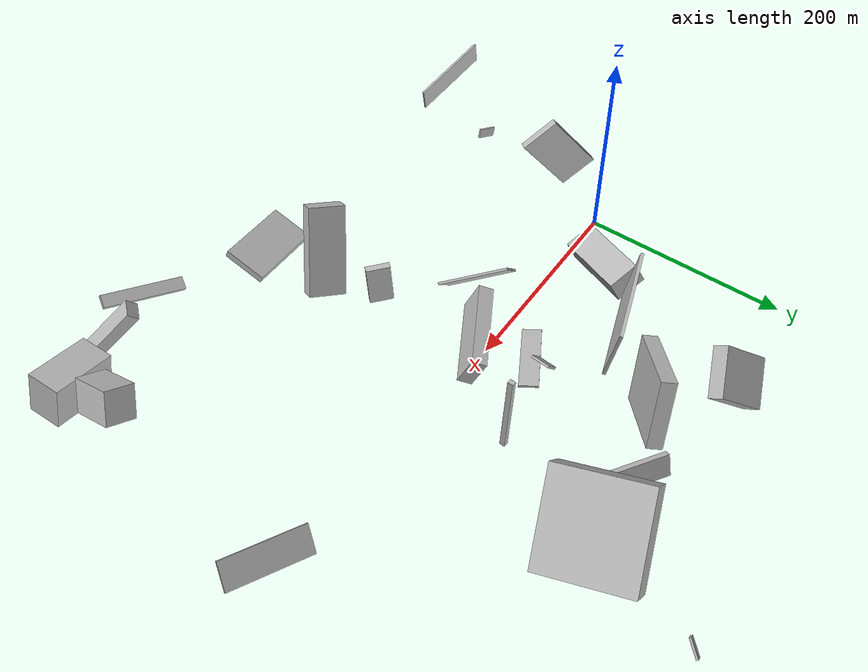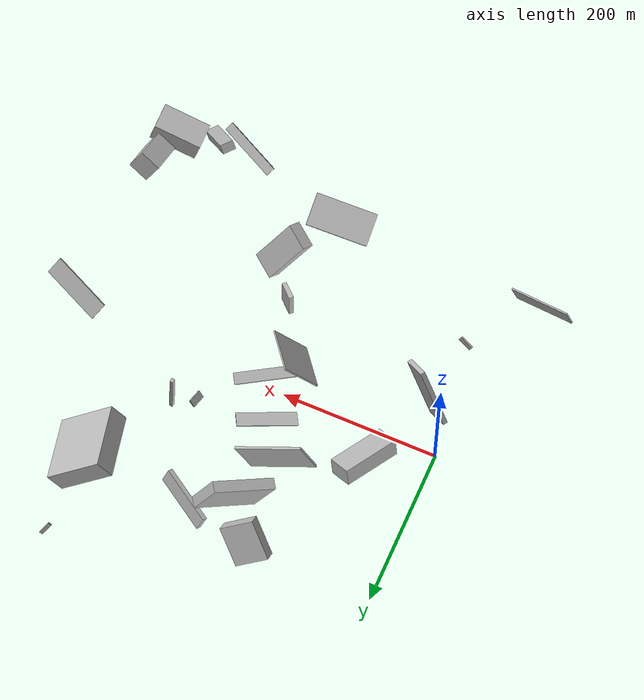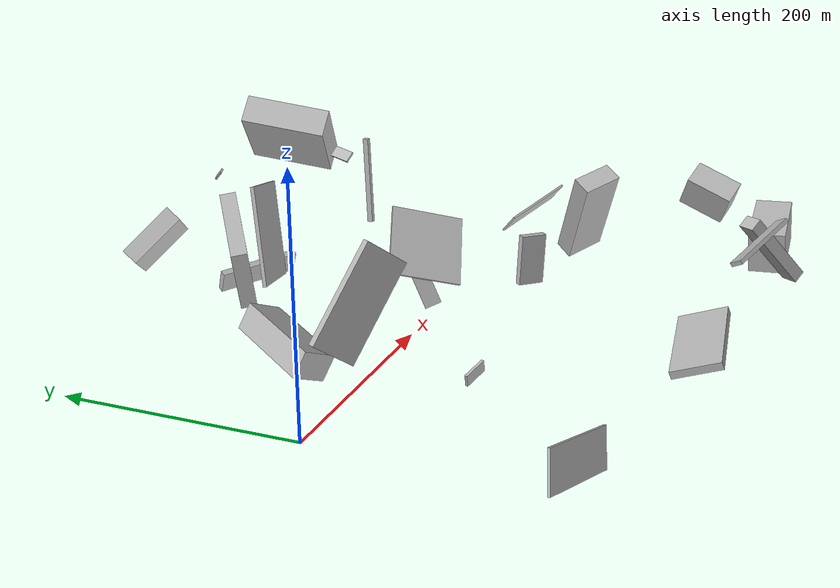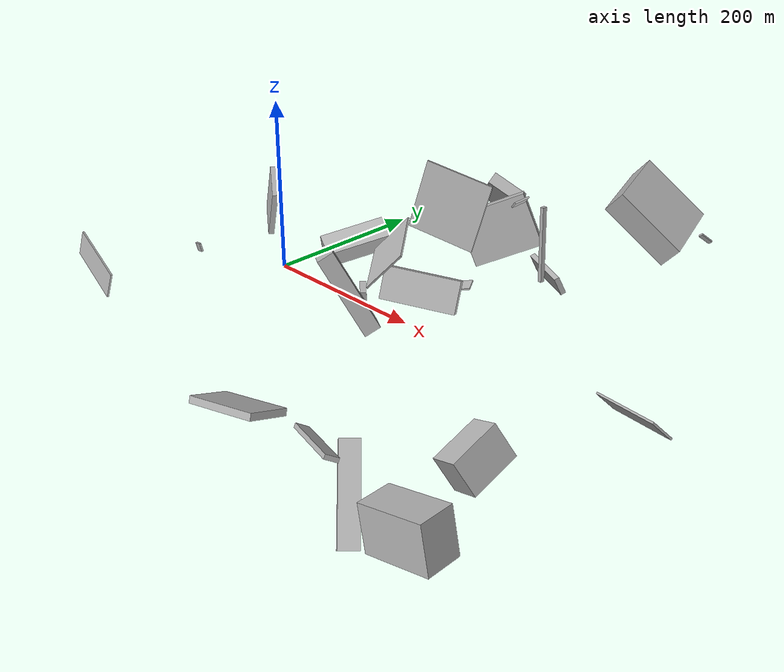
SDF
<sdf version="1.6">
 <world name="default">
  <scene>
   <sky><clouds><speed>12</speed></clouds></sky>
   <ambient>0.4 0.4 0.4 1</ambient>
   <background>0.7 0.7 0.7 1</background>
   <shadows>1</shadows>
  </scene>
  <gravity>0 0 -9.8066</gravity>
  <magnetic_field>6e-06 2.3e-05 -4.2e-05</magnetic_field>
  <physics default="0" name="default_physics" type="ode">
   <ode>
    <solver>
     <type>quick</type>
     <iters>10</iters>
     <sor>1.0</sor>
     <use_dynamic_moi_rescaling>0</use_dynamic_moi_rescaling>
    </solver>
    <constraints>
     <cfm>0</cfm>
     <erp>0.2</erp>
     <contact_max_correcting_vel>100</contact_max_correcting_vel>
     <contact_surface_layer>0.001</contact_surface_layer>
    </constraints>
   </ode>
   <max_step_size>0.004</max_step_size>
   <real_time_factor>1</real_time_factor>
   <real_time_update_rate>250</real_time_update_rate>
  </physics>
  <light name="sun" type="directional">
   <pose>0 0 10 0 0 0</pose>
   <diffuse>0.8 0.8 0.8 1</diffuse>
   <specular>0.2 0.2 0.2 1</specular>
   <attenuation>
    <range>1000</range>
    <constant>0.9</constant>
    <linear>0.01</linear>
    <quadratic>0.001</quadratic>
   </attenuation>
   <direction>-0.5 0.1 -0.9</direction>
  </light>
  <model name="building_1">
   <static>0</static>
   <pose>76.04790630792351 45.089461199754645 48.779330055488025 2.920559681753308 -0.41017167565143564 2.736299766734667</pose>
   <link name="link">
    <gravity>0</gravity>
    <pose>0 0 11.0 0 0 0</pose>
    <collision name="collision"><geometry><box><size>30 76 22</size></box></geometry></collision>
    <visual name="visual">
     <cast_shadows>0</cast_shadows>
     <geometry><box><size>30 76 22</size></box></geometry>
     <material>
      <script>
       <uri>model://HANNAS_wall/materials/scripts</uri>
       <uri>model://HANNAS_wall/materials/textures</uri>
       <name>vrc/HANNAS_wall</name>
      </script>
     </material>
    </visual>
   </link>
  </model>
  <model name="building_2">
   <static>0</static>
   <pose>306.69994348847916 89.30317593972296 96.86076143409947 -1.4485122574014349 -1.5193719429761932 2.8869497635699277</pose>
   <link name="link">
    <gravity>0</gravity>
    <pose>0 0 2.5 0 0 0</pose>
    <collision name="collision"><geometry><box><size>80 4 5</size></box></geometry></collision>
    <visual name="visual">
     <cast_shadows>0</cast_shadows>
     <geometry><box><size>80 4 5</size></box></geometry>
     <material>
      <script>
       <uri>model://HANNAS_wall/materials/scripts</uri>
       <uri>model://HANNAS_wall/materials/textures</uri>
       <name>vrc/HANNAS_wall</name>
      </script>
     </material>
    </visual>
   </link>
  </model>
  <model name="building_3">
   <static>0</static>
   <pose>196.97712582850104 55.061619468064734 27.579972238937458 1.6465893319324172 -0.19250675857624452 0.504080026125055</pose>
   <link name="link">
    <gravity>0</gravity>
    <pose>0 0 9.0 0 0 0</pose>
    <collision name="collision"><geometry><box><size>76 2 18</size></box></geometry></collision>
    <visual name="visual">
     <cast_shadows>0</cast_shadows>
     <geometry><box><size>76 2 18</size></box></geometry>
     <material>
      <script>
       <uri>model://HANNAS_wall/materials/scripts</uri>
       <uri>model://HANNAS_wall/materials/textures</uri>
       <name>vrc/HANNAS_wall</name>
      </script>
     </material>
    </visual>
   </link>
  </model>
  <model name="building_4">
   <static>0</static>
   <pose>-49.917110470744504 -213.45691588801674 57.570302563754375 1.7367522456977493 -0.2629374850045297 2.961086824282669</pose>
   <link name="link">
    <gravity>0</gravity>
    <pose>0 0 1.0 0 0 0</pose>
    <collision name="collision"><geometry><box><size>80 28 2</size></box></geometry></collision>
    <visual name="visual">
     <cast_shadows>0</cast_shadows>
     <geometry><box><size>80 28 2</size></box></geometry>
     <material>
      <script>
       <uri>model://HANNAS_wall/materials/scripts</uri>
       <uri>model://HANNAS_wall/materials/textures</uri>
       <name>vrc/HANNAS_wall</name>
      </script>
     </material>
    </visual>
   </link>
  </model>
  <model name="building_5">
   <static>0</static>
   <pose>29.64558829507472 -32.010425852530425 99.8481769485184 -1.4956779648121437 -0.6299224830429166 2.5040331896353</pose>
   <link name="link">
    <gravity>0</gravity>
    <pose>0 0 3.0 0 0 0</pose>
    <collision name="collision"><geometry><box><size>37 80 6</size></box></geometry></collision>
    <visual name="visual">
     <cast_shadows>0</cast_shadows>
     <geometry><box><size>37 80 6</size></box></geometry>
     <material>
      <script>
       <uri>model://HANNAS_wall/materials/scripts</uri>
       <uri>model://HANNAS_wall/materials/textures</uri>
       <name>vrc/HANNAS_wall</name>
      </script>
     </material>
    </visual>
   </link>
  </model>
  <model name="building_6">
   <static>0</static>
   <pose>217.40635842466637 6.560076079788521 44.46073576202037 -1.1945702789649921 -0.1025025628481596 -2.630331385807897</pose>
   <link name="link">
    <gravity>0</gravity>
    <pose>0 0 7.0 0 0 0</pose>
    <collision name="collision"><geometry><box><size>80 35 14</size></box></geometry></collision>
    <visual name="visual">
     <cast_shadows>0</cast_shadows>
     <geometry><box><size>80 35 14</size></box></geometry>
     <material>
      <script>
       <uri>model://HANNAS_wall/materials/scripts</uri>
       <uri>model://HANNAS_wall/materials/textures</uri>
       <name>vrc/HANNAS_wall</name>
      </script>
     </material>
    </visual>
   </link>
  </model>
  <model name="building_7">
   <static>0</static>
   <pose>191.06145528694555 -17.84634617487471 85.3578008997323 2.2507146204383814 -0.2740168381832624 2.2172568862591193</pose>
   <link name="link">
    <gravity>0</gravity>
    <pose>0 0 1.0 0 0 0</pose>
    <collision name="collision"><geometry><box><size>61 58 2</size></box></geometry></collision>
    <visual name="visual">
     <cast_shadows>0</cast_shadows>
     <geometry><box><size>61 58 2</size></box></geometry>
     <material>
      <script>
       <uri>model://HANNAS_wall/materials/scripts</uri>
       <uri>model://HANNAS_wall/materials/textures</uri>
       <name>vrc/HANNAS_wall</name>
      </script>
     </material>
    </visual>
   </link>
  </model>
  <model name="building_8">
   <static>0</static>
   <pose>13.956068099656608 -125.13636815894546 69.0213280568838 1.1515460793784407 -1.2454960604112426 -3.051983912061413</pose>
   <link name="link">
    <gravity>0</gravity>
    <pose>0 0 1.0 0 0 0</pose>
    <collision name="collision"><geometry><box><size>9 18 2</size></box></geometry></collision>
    <visual name="visual">
     <cast_shadows>0</cast_shadows>
     <geometry><box><size>9 18 2</size></box></geometry>
     <material>
      <script>
       <uri>model://HANNAS_wall/materials/scripts</uri>
       <uri>model://HANNAS_wall/materials/textures</uri>
       <name>vrc/HANNAS_wall</name>
      </script>
     </material>
    </visual>
   </link>
  </model>
  <model name="building_9">
   <static>0</static>
   <pose>355.8224495034617 197.86402161299543 106.88695317843586 0.6968093752605053 -0.15852935025292528 1.8021287039524216</pose>
   <link name="link">
    <gravity>0</gravity>
    <pose>0 0 13.5 0 0 0</pose>
    <collision name="collision"><geometry><box><size>80 80 27</size></box></geometry></collision>
    <visual name="visual">
     <cast_shadows>0</cast_shadows>
     <geometry><box><size>80 80 27</size></box></geometry>
     <material>
      <script>
       <uri>model://HANNAS_wall/materials/scripts</uri>
       <uri>model://HANNAS_wall/materials/textures</uri>
       <name>vrc/HANNAS_wall</name>
      </script>
     </material>
    </visual>
   </link>
  </model>
  <model name="building_10">
   <static>0</static>
   <pose>385.36455502101626 -249.36994495436926 71.46699259756036 3.054297281573171 -0.7497112893518799 -0.6539026567406591</pose>
   <link name="link">
    <gravity>0</gravity>
    <pose>0 0 40.0 0 0 0</pose>
    <collision name="collision"><geometry><box><size>12 17 80</size></box></geometry></collision>
    <visual name="visual">
     <cast_shadows>0</cast_shadows>
     <geometry><box><size>12 17 80</size></box></geometry>
     <material>
      <script>
       <uri>model://HANNAS_wall/materials/scripts</uri>
       <uri>model://HANNAS_wall/materials/textures</uri>
       <name>vrc/HANNAS_wall</name>
      </script>
     </material>
    </visual>
   </link>
  </model>
  <model name="building_11">
   <static>0</static>
   <pose>253.5006936827504 179.33217973221016 16.505943540109488 2.009396169195186 -0.061082447749270255 -0.5590279948926604</pose>
   <link name="link">
    <gravity>0</gravity>
    <pose>0 0 3.0 0 0 0</pose>
    <collision name="collision"><geometry><box><size>75 21 6</size></box></geometry></collision>
    <visual name="visual">
     <cast_shadows>0</cast_shadows>
     <geometry><box><size>75 21 6</size></box></geometry>
     <material>
      <script>
       <uri>model://HANNAS_wall/materials/scripts</uri>
       <uri>model://HANNAS_wall/materials/textures</uri>
       <name>vrc/HANNAS_wall</name>
      </script>
     </material>
    </visual>
   </link>
  </model>
  <model name="building_12">
   <static>0</static>
   <pose>327.07882080745566 -247.7147650254478 52.710066372471964 -1.0487114933075372 1.0132247332797506 -1.5103023850679795</pose>
   <link name="link">
    <gravity>0</gravity>
    <pose>0 0 38.5 0 0 0</pose>
    <collision name="collision"><geometry><box><size>4 12 77</size></box></geometry></collision>
    <visual name="visual">
     <cast_shadows>0</cast_shadows>
     <geometry><box><size>4 12 77</size></box></geometry>
     <material>
      <script>
       <uri>model://HANNAS_wall/materials/scripts</uri>
       <uri>model://HANNAS_wall/materials/textures</uri>
       <name>vrc/HANNAS_wall</name>
      </script>
     </material>
    </visual>
   </link>
  </model>
  <model name="building_13">
   <static>0</static>
   <pose>189.75873197920146 166.20695219603624 56.40171103272833 1.4369343727453645 -0.4087308621533723 0.6453244345974076</pose>
   <link name="link">
    <gravity>0</gravity>
    <pose>0 0 7.0 0 0 0</pose>
    <collision name="collision"><geometry><box><size>80 63 14</size></box></geometry></collision>
    <visual name="visual">
     <cast_shadows>0</cast_shadows>
     <geometry><box><size>80 63 14</size></box></geometry>
     <material>
      <script>
       <uri>model://HANNAS_wall/materials/scripts</uri>
       <uri>model://HANNAS_wall/materials/textures</uri>
       <name>vrc/HANNAS_wall</name>
      </script>
     </material>
    </visual>
   </link>
  </model>
  <model name="building_14">
   <static>0</static>
   <pose>453.126786937942 -197.32103954587876 65.62147384620187 1.1337993079831967 -0.3736819649205317 1.4933490239224507</pose>
   <link name="link">
    <gravity>0</gravity>
    <pose>0 0 14.0 0 0 0</pose>
    <collision name="collision"><geometry><box><size>44 31 28</size></box></geometry></collision>
    <visual name="visual">
     <cast_shadows>0</cast_shadows>
     <geometry><box><size>44 31 28</size></box></geometry>
     <material>
      <script>
       <uri>model://HANNAS_wall/materials/scripts</uri>
       <uri>model://HANNAS_wall/materials/textures</uri>
       <name>vrc/HANNAS_wall</name>
      </script>
     </material>
    </visual>
   </link>
  </model>
  <model name="building_15">
   <static>0</static>
   <pose>225.47659624189623 -236.1995515820063 23.802067781811623 -2.951580697917604 -0.3468771505141532 -1.5257956031332764</pose>
   <link name="link">
    <gravity>0</gravity>
    <pose>0 0 3.5 0 0 0</pose>
    <collision name="collision"><geometry><box><size>42 80 7</size></box></geometry></collision>
    <visual name="visual">
     <cast_shadows>0</cast_shadows>
     <geometry><box><size>42 80 7</size></box></geometry>
     <material>
      <script>
       <uri>model://HANNAS_wall/materials/scripts</uri>
       <uri>model://HANNAS_wall/materials/textures</uri>
       <name>vrc/HANNAS_wall</name>
      </script>
     </material>
    </visual>
   </link>
  </model>
  <model name="building_16">
   <static>0</static>
   <pose>161.65513666337026 108.69471041386444 90.46536956816863 -2.0635645686895034 -1.3119513887627354 0.8155780654475047</pose>
   <link name="link">
    <gravity>0</gravity>
    <pose>0 0 1.5 0 0 0</pose>
    <collision name="collision"><geometry><box><size>80 80 3</size></box></geometry></collision>
    <visual name="visual">
     <cast_shadows>0</cast_shadows>
     <geometry><box><size>80 80 3</size></box></geometry>
     <material>
      <script>
       <uri>model://HANNAS_wall/materials/scripts</uri>
       <uri>model://HANNAS_wall/materials/textures</uri>
       <name>vrc/HANNAS_wall</name>
      </script>
     </material>
    </visual>
   </link>
  </model>
  <model name="building_17">
   <static>0</static>
   <pose>271.03481704304073 -142.92217253623025 110.8301235369218 1.8177464681525575 0.49292834100153543 -2.0807180599347506</pose>
   <link name="link">
    <gravity>0</gravity>
    <pose>0 0 16.5 0 0 0</pose>
    <collision name="collision"><geometry><box><size>16 80 33</size></box></geometry></collision>
    <visual name="visual">
     <cast_shadows>0</cast_shadows>
     <geometry><box><size>16 80 33</size></box></geometry>
     <material>
      <script>
       <uri>model://HANNAS_wall/materials/scripts</uri>
       <uri>model://HANNAS_wall/materials/textures</uri>
       <name>vrc/HANNAS_wall</name>
      </script>
     </material>
    </visual>
   </link>
  </model>
  <model name="building_18">
   <static>0</static>
   <pose>452.65409142534503 -260.3379031425047 56.77243500128351 2.9011983415899234 0.043000900304831086 1.591356864262328</pose>
   <link name="link">
    <gravity>0</gravity>
    <pose>0 0 20.5 0 0 0</pose>
    <collision name="collision"><geometry><box><size>33 62 41</size></box></geometry></collision>
    <visual name="visual">
     <cast_shadows>0</cast_shadows>
     <geometry><box><size>33 62 41</size></box></geometry>
     <material>
      <script>
       <uri>model://HANNAS_wall/materials/scripts</uri>
       <uri>model://HANNAS_wall/materials/textures</uri>
       <name>vrc/HANNAS_wall</name>
      </script>
     </material>
    </visual>
   </link>
  </model>
  <model name="building_19">
   <static>0</static>
   <pose>449.60275866729893 -2.2599698462132256 20.152475555387575 1.2608085126081003 0.7830499787558148 0.9663181093283076</pose>
   <link name="link">
    <gravity>0</gravity>
    <pose>0 0 40.0 0 0 0</pose>
    <collision name="collision"><geometry><box><size>26 2 80</size></box></geometry></collision>
    <visual name="visual">
     <cast_shadows>0</cast_shadows>
     <geometry><box><size>26 2 80</size></box></geometry>
     <material>
      <script>
       <uri>model://HANNAS_wall/materials/scripts</uri>
       <uri>model://HANNAS_wall/materials/textures</uri>
       <name>vrc/HANNAS_wall</name>
      </script>
     </material>
    </visual>
   </link>
  </model>
  <model name="building_20">
   <static>0</static>
   <pose>170.344092264086 223.41520243688694 62.225656912435824 0.8920987209752229 -0.6686081839597848 -0.675635337995741</pose>
   <link name="link">
    <gravity>0</gravity>
    <pose>0 0 22.0 0 0 0</pose>
    <collision name="collision"><geometry><box><size>51 15 44</size></box></geometry></collision>
    <visual name="visual">
     <cast_shadows>0</cast_shadows>
     <geometry><box><size>51 15 44</size></box></geometry>
     <material>
      <script>
       <uri>model://HANNAS_wall/materials/scripts</uri>
       <uri>model://HANNAS_wall/materials/textures</uri>
       <name>vrc/HANNAS_wall</name>
      </script>
     </material>
    </visual>
   </link>
  </model>
  <model name="building_21">
   <static>0</static>
   <pose>237.46038942548472 -90.59566301194761 68.42046262473822 1.5897087006915958 0.04525286144021641 -0.7460207683345281</pose>
   <link name="link">
    <gravity>0</gravity>
    <pose>0 0 3.0 0 0 0</pose>
    <collision name="collision"><geometry><box><size>22 42 6</size></box></geometry></collision>
    <visual name="visual">
     <cast_shadows>0</cast_shadows>
     <geometry><box><size>22 42 6</size></box></geometry>
     <material>
      <script>
       <uri>model://HANNAS_wall/materials/scripts</uri>
       <uri>model://HANNAS_wall/materials/textures</uri>
       <name>vrc/HANNAS_wall</name>
      </script>
     </material>
    </visual>
   </link>
  </model>
  <model name="building_22">
   <static>0</static>
   <pose>266.4973981340903 96.31630905861445 126.76585048213329 0.776411250478054 -0.17452896598999232 1.350528058729603</pose>
   <link name="link">
    <gravity>0</gravity>
    <pose>0 0 5.0 0 0 0</pose>
    <collision name="collision"><geometry><box><size>18 2 10</size></box></geometry></collision>
    <visual name="visual">
     <cast_shadows>0</cast_shadows>
     <geometry><box><size>18 2 10</size></box></geometry>
     <material>
      <script>
       <uri>model://HANNAS_wall/materials/scripts</uri>
       <uri>model://HANNAS_wall/materials/textures</uri>
       <name>vrc/HANNAS_wall</name>
      </script>
     </material>
    </visual>
   </link>
  </model>
  <model name="building_23">
   <static>0</static>
   <pose>374.2780034286313 286.31726330020183 66.83892122819955 2.4436497716393597 0.6653543446069748 -3.0812118370119994</pose>
   <link name="link">
    <gravity>0</gravity>
    <pose>0 0 8.5 0 0 0</pose>
    <collision name="collision"><geometry><box><size>5 2 17</size></box></geometry></collision>
    <visual name="visual">
     <cast_shadows>0</cast_shadows>
     <geometry><box><size>5 2 17</size></box></geometry>
     <material>
      <script>
       <uri>model://HANNAS_wall/materials/scripts</uri>
       <uri>model://HANNAS_wall/materials/textures</uri>
       <name>vrc/HANNAS_wall</name>
      </script>
     </material>
    </visual>
   </link>
  </model>
 </world>
</sdf>
